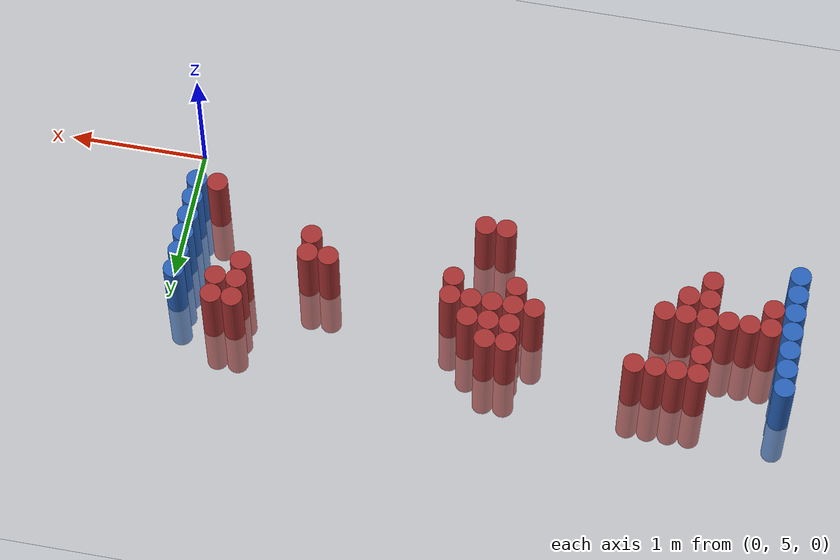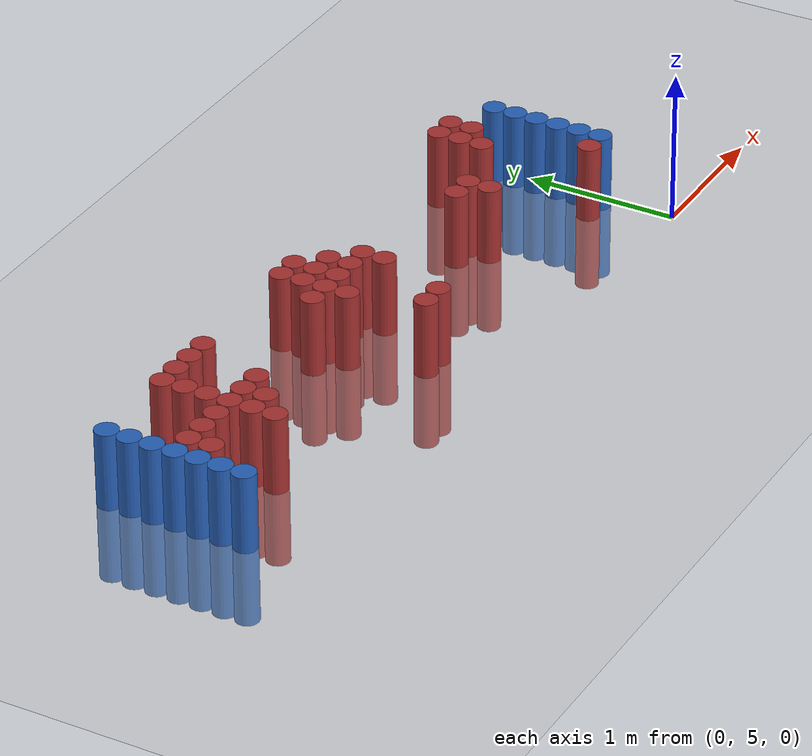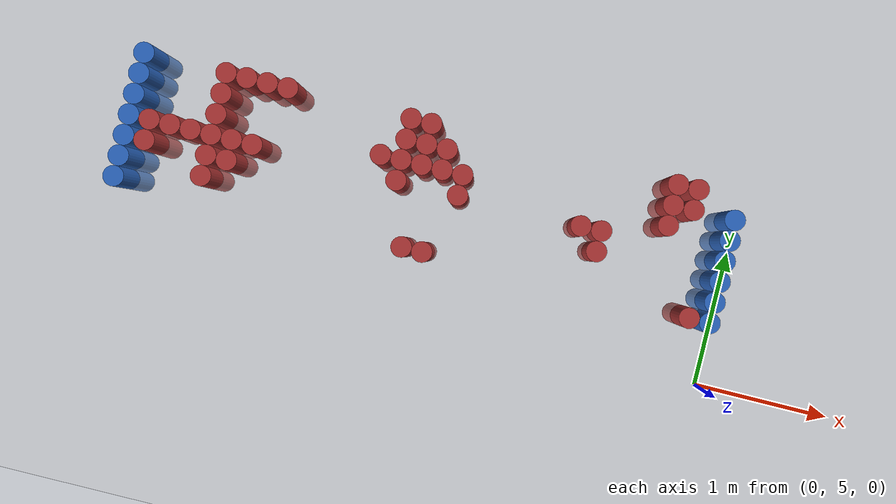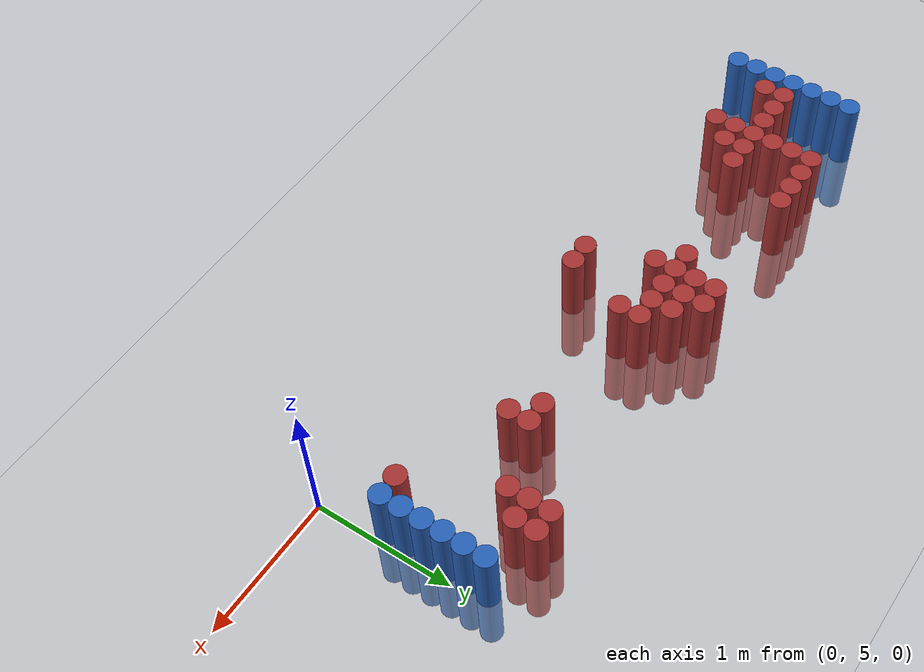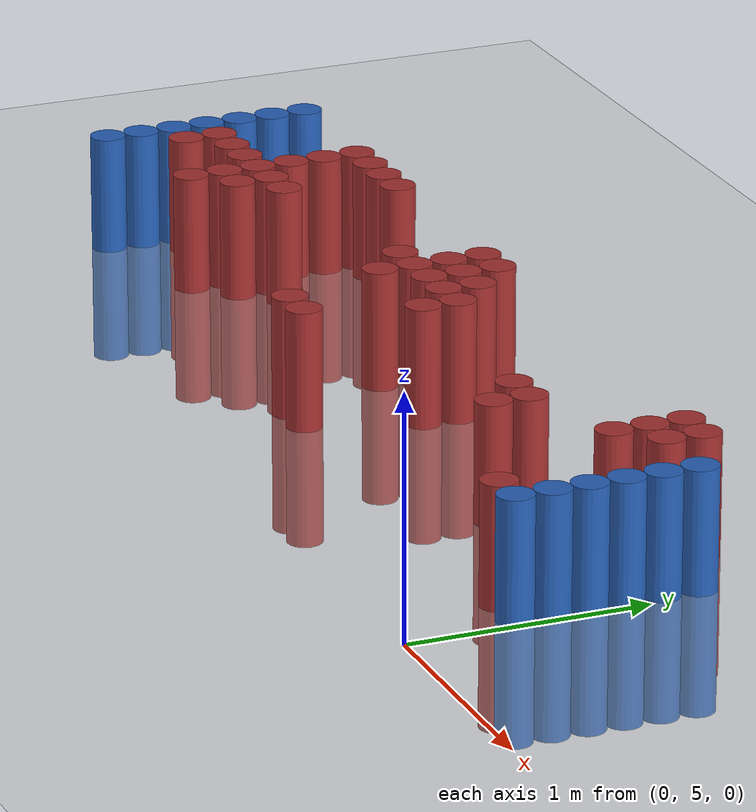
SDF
<sdf version="1.6">
 <world name="default">
  <model name="ground_plane">
   <static>1</static>
   <link name="link">
    <collision name="collision">
     <geometry><plane><normal>0 0 1</normal><size>100 100</size></plane></geometry>
     <surface><friction><ode><mu>100</mu><mu2>50</mu2></ode></friction></surface>
    </collision>
    <visual name="visual">
     <cast_shadows>0</cast_shadows>
     <geometry><plane><normal>0 0 1</normal><size>100 100</size></plane></geometry>
     <material>
      <script><uri>file://media/materials/scripts/gazebo.material</uri><name>Gazebo/Grey</name></script>
     </material>
    </visual>
   </link>
  </model>
  <model name="unit_cylinder_98">
   <static>1</static>
   <pose>-4.425000 5.475000 0.000000 0.000000 0.000000 0.000000</pose>
   <link name="link">
    <inertial>
     <mass>1</mass>
     <inertia><ixx>0.145833</ixx><ixy>0</ixy><ixz>0</ixz><iyy>0.145833</iyy><iyz>0</iyz><izz>0.125</izz></inertia>
    </inertial>
    <collision name="collision">
     <geometry><cylinder><radius>0.075000</radius><length>1</length></cylinder></geometry>
    </collision>
    <visual name="visual">
     <geometry><cylinder><radius>0.075000</radius><length>1</length></cylinder></geometry>
     <material>
      <ambient>0.152000 0.379000 0.720000 1</ambient>
      <diffuse>0.152000 0.379000 0.720000 1</diffuse>
     </material>
     <material>
      <script><name>Gazebo/Grey</name><uri>file://media/materials/scripts/gazebo.material</uri></script>
     </material>
    </visual>
   </link>
  </model>
  <model name="unit_cylinder_99">
   <static>1</static>
   <pose>-4.425000 5.625000 0.000000 0.000000 0.000000 0.000000</pose>
   <link name="link">
    <inertial>
     <mass>1</mass>
     <inertia><ixx>0.145833</ixx><ixy>0</ixy><ixz>0</ixz><iyy>0.145833</iyy><iyz>0</iyz><izz>0.125</izz></inertia>
    </inertial>
    <collision name="collision">
     <geometry><cylinder><radius>0.075000</radius><length>1</length></cylinder></geometry>
    </collision>
    <visual name="visual">
     <geometry><cylinder><radius>0.075000</radius><length>1</length></cylinder></geometry>
     <material>
      <ambient>0.152000 0.379000 0.720000 1</ambient>
      <diffuse>0.152000 0.379000 0.720000 1</diffuse>
     </material>
     <material>
      <script><name>Gazebo/Grey</name><uri>file://media/materials/scripts/gazebo.material</uri></script>
     </material>
    </visual>
   </link>
  </model>
  <model name="unit_cylinder_100">
   <static>1</static>
   <pose>-4.425000 5.775000 0.000000 0.000000 0.000000 0.000000</pose>
   <link name="link">
    <inertial>
     <mass>1</mass>
     <inertia><ixx>0.145833</ixx><ixy>0</ixy><ixz>0</ixz><iyy>0.145833</iyy><iyz>0</iyz><izz>0.125</izz></inertia>
    </inertial>
    <collision name="collision">
     <geometry><cylinder><radius>0.075000</radius><length>1</length></cylinder></geometry>
    </collision>
    <visual name="visual">
     <geometry><cylinder><radius>0.075000</radius><length>1</length></cylinder></geometry>
     <material>
      <ambient>0.152000 0.379000 0.720000 1</ambient>
      <diffuse>0.152000 0.379000 0.720000 1</diffuse>
     </material>
     <material>
      <script><name>Gazebo/Grey</name><uri>file://media/materials/scripts/gazebo.material</uri></script>
     </material>
    </visual>
   </link>
  </model>
  <model name="unit_cylinder_101">
   <static>1</static>
   <pose>-4.425000 5.925000 0.000000 0.000000 0.000000 0.000000</pose>
   <link name="link">
    <inertial>
     <mass>1</mass>
     <inertia><ixx>0.145833</ixx><ixy>0</ixy><ixz>0</ixz><iyy>0.145833</iyy><iyz>0</iyz><izz>0.125</izz></inertia>
    </inertial>
    <collision name="collision">
     <geometry><cylinder><radius>0.075000</radius><length>1</length></cylinder></geometry>
    </collision>
    <visual name="visual">
     <geometry><cylinder><radius>0.075000</radius><length>1</length></cylinder></geometry>
     <material>
      <ambient>0.152000 0.379000 0.720000 1</ambient>
      <diffuse>0.152000 0.379000 0.720000 1</diffuse>
     </material>
     <material>
      <script><name>Gazebo/Grey</name><uri>file://media/materials/scripts/gazebo.material</uri></script>
     </material>
    </visual>
   </link>
  </model>
  <model name="unit_cylinder_102">
   <static>1</static>
   <pose>-4.425000 6.075000 0.000000 0.000000 0.000000 0.000000</pose>
   <link name="link">
    <inertial>
     <mass>1</mass>
     <inertia><ixx>0.145833</ixx><ixy>0</ixy><ixz>0</ixz><iyy>0.145833</iyy><iyz>0</iyz><izz>0.125</izz></inertia>
    </inertial>
    <collision name="collision">
     <geometry><cylinder><radius>0.075000</radius><length>1</length></cylinder></geometry>
    </collision>
    <visual name="visual">
     <geometry><cylinder><radius>0.075000</radius><length>1</length></cylinder></geometry>
     <material>
      <ambient>0.152000 0.379000 0.720000 1</ambient>
      <diffuse>0.152000 0.379000 0.720000 1</diffuse>
     </material>
     <material>
      <script><name>Gazebo/Grey</name><uri>file://media/materials/scripts/gazebo.material</uri></script>
     </material>
    </visual>
   </link>
  </model>
  <model name="unit_cylinder_103">
   <static>1</static>
   <pose>-4.425000 6.225000 0.000000 0.000000 0.000000 0.000000</pose>
   <link name="link">
    <inertial>
     <mass>1</mass>
     <inertia><ixx>0.145833</ixx><ixy>0</ixy><ixz>0</ixz><iyy>0.145833</iyy><iyz>0</iyz><izz>0.125</izz></inertia>
    </inertial>
    <collision name="collision">
     <geometry><cylinder><radius>0.075000</radius><length>1</length></cylinder></geometry>
    </collision>
    <visual name="visual">
     <geometry><cylinder><radius>0.075000</radius><length>1</length></cylinder></geometry>
     <material>
      <ambient>0.152000 0.379000 0.720000 1</ambient>
      <diffuse>0.152000 0.379000 0.720000 1</diffuse>
     </material>
     <material>
      <script><name>Gazebo/Grey</name><uri>file://media/materials/scripts/gazebo.material</uri></script>
     </material>
    </visual>
   </link>
  </model>
  <model name="unit_cylinder_104">
   <static>1</static>
   <pose>-4.425000 6.375000 0.000000 0.000000 0.000000 0.000000</pose>
   <link name="link">
    <inertial>
     <mass>1</mass>
     <inertia><ixx>0.145833</ixx><ixy>0</ixy><ixz>0</ixz><iyy>0.145833</iyy><iyz>0</iyz><izz>0.125</izz></inertia>
    </inertial>
    <collision name="collision">
     <geometry><cylinder><radius>0.075000</radius><length>1</length></cylinder></geometry>
    </collision>
    <visual name="visual">
     <geometry><cylinder><radius>0.075000</radius><length>1</length></cylinder></geometry>
     <material>
      <ambient>0.152000 0.379000 0.720000 1</ambient>
      <diffuse>0.152000 0.379000 0.720000 1</diffuse>
     </material>
     <material>
      <script><name>Gazebo/Grey</name><uri>file://media/materials/scripts/gazebo.material</uri></script>
     </material>
    </visual>
   </link>
  </model>
  <model name="unit_cylinder_126">
   <static>1</static>
   <pose>-4.275000 5.775000 0.000000 0.000000 0.000000 0.000000</pose>
   <link name="link">
    <inertial>
     <mass>1</mass>
     <inertia><ixx>0.145833</ixx><ixy>0</ixy><ixz>0</ixz><iyy>0.145833</iyy><iyz>0</iyz><izz>0.125</izz></inertia>
    </inertial>
    <collision name="collision">
     <geometry><cylinder><radius>0.075000</radius><length>1</length></cylinder></geometry>
    </collision>
    <visual name="visual">
     <geometry><cylinder><radius>0.075000</radius><length>1</length></cylinder></geometry>
     <material>
      <ambient>0.648000 0.192000 0.192000 1</ambient>
      <diffuse>0.648000 0.192000 0.192000 1</diffuse>
     </material>
     <material>
      <script><name>Gazebo/Grey</name><uri>file://media/materials/scripts/gazebo.material</uri></script>
     </material>
    </visual>
   </link>
  </model>
  <model name="unit_cylinder_127">
   <static>1</static>
   <pose>-4.275000 5.925000 0.000000 0.000000 0.000000 0.000000</pose>
   <link name="link">
    <inertial>
     <mass>1</mass>
     <inertia><ixx>0.145833</ixx><ixy>0</ixy><ixz>0</ixz><iyy>0.145833</iyy><iyz>0</iyz><izz>0.125</izz></inertia>
    </inertial>
    <collision name="collision">
     <geometry><cylinder><radius>0.075000</radius><length>1</length></cylinder></geometry>
    </collision>
    <visual name="visual">
     <geometry><cylinder><radius>0.075000</radius><length>1</length></cylinder></geometry>
     <material>
      <ambient>0.648000 0.192000 0.192000 1</ambient>
      <diffuse>0.648000 0.192000 0.192000 1</diffuse>
     </material>
     <material>
      <script><name>Gazebo/Grey</name><uri>file://media/materials/scripts/gazebo.material</uri></script>
     </material>
    </visual>
   </link>
  </model>
  <model name="unit_cylinder_139">
   <static>1</static>
   <pose>-4.125000 5.925000 0.000000 0.000000 0.000000 0.000000</pose>
   <link name="link">
    <inertial>
     <mass>1</mass>
     <inertia><ixx>0.145833</ixx><ixy>0</ixy><ixz>0</ixz><iyy>0.145833</iyy><iyz>0</iyz><izz>0.125</izz></inertia>
    </inertial>
    <collision name="collision">
     <geometry><cylinder><radius>0.075000</radius><length>1</length></cylinder></geometry>
    </collision>
    <visual name="visual">
     <geometry><cylinder><radius>0.075000</radius><length>1</length></cylinder></geometry>
     <material>
      <ambient>0.648000 0.192000 0.192000 1</ambient>
      <diffuse>0.648000 0.192000 0.192000 1</diffuse>
     </material>
     <material>
      <script><name>Gazebo/Grey</name><uri>file://media/materials/scripts/gazebo.material</uri></script>
     </material>
    </visual>
   </link>
  </model>
  <model name="unit_cylinder_144">
   <static>1</static>
   <pose>-3.975000 5.925000 0.000000 0.000000 0.000000 0.000000</pose>
   <link name="link">
    <inertial>
     <mass>1</mass>
     <inertia><ixx>0.145833</ixx><ixy>0</ixy><ixz>0</ixz><iyy>0.145833</iyy><iyz>0</iyz><izz>0.125</izz></inertia>
    </inertial>
    <collision name="collision">
     <geometry><cylinder><radius>0.075000</radius><length>1</length></cylinder></geometry>
    </collision>
    <visual name="visual">
     <geometry><cylinder><radius>0.075000</radius><length>1</length></cylinder></geometry>
     <material>
      <ambient>0.648000 0.192000 0.192000 1</ambient>
      <diffuse>0.648000 0.192000 0.192000 1</diffuse>
     </material>
     <material>
      <script><name>Gazebo/Grey</name><uri>file://media/materials/scripts/gazebo.material</uri></script>
     </material>
    </visual>
   </link>
  </model>
  <model name="unit_cylinder_146">
   <static>1</static>
   <pose>-3.825000 5.625000 0.000000 0.000000 0.000000 0.000000</pose>
   <link name="link">
    <inertial>
     <mass>1</mass>
     <inertia><ixx>0.145833</ixx><ixy>0</ixy><ixz>0</ixz><iyy>0.145833</iyy><iyz>0</iyz><izz>0.125</izz></inertia>
    </inertial>
    <collision name="collision">
     <geometry><cylinder><radius>0.075000</radius><length>1</length></cylinder></geometry>
    </collision>
    <visual name="visual">
     <geometry><cylinder><radius>0.075000</radius><length>1</length></cylinder></geometry>
     <material>
      <ambient>0.648000 0.192000 0.192000 1</ambient>
      <diffuse>0.648000 0.192000 0.192000 1</diffuse>
     </material>
     <material>
      <script><name>Gazebo/Grey</name><uri>file://media/materials/scripts/gazebo.material</uri></script>
     </material>
    </visual>
   </link>
  </model>
  <model name="unit_cylinder_147">
   <static>1</static>
   <pose>-3.825000 5.775000 0.000000 0.000000 0.000000 0.000000</pose>
   <link name="link">
    <inertial>
     <mass>1</mass>
     <inertia><ixx>0.145833</ixx><ixy>0</ixy><ixz>0</ixz><iyy>0.145833</iyy><iyz>0</iyz><izz>0.125</izz></inertia>
    </inertial>
    <collision name="collision">
     <geometry><cylinder><radius>0.075000</radius><length>1</length></cylinder></geometry>
    </collision>
    <visual name="visual">
     <geometry><cylinder><radius>0.075000</radius><length>1</length></cylinder></geometry>
     <material>
      <ambient>0.648000 0.192000 0.192000 1</ambient>
      <diffuse>0.648000 0.192000 0.192000 1</diffuse>
     </material>
     <material>
      <script><name>Gazebo/Grey</name><uri>file://media/materials/scripts/gazebo.material</uri></script>
     </material>
    </visual>
   </link>
  </model>
  <model name="unit_cylinder_148">
   <static>1</static>
   <pose>-3.825000 5.925000 0.000000 0.000000 0.000000 0.000000</pose>
   <link name="link">
    <inertial>
     <mass>1</mass>
     <inertia><ixx>0.145833</ixx><ixy>0</ixy><ixz>0</ixz><iyy>0.145833</iyy><iyz>0</iyz><izz>0.125</izz></inertia>
    </inertial>
    <collision name="collision">
     <geometry><cylinder><radius>0.075000</radius><length>1</length></cylinder></geometry>
    </collision>
    <visual name="visual">
     <geometry><cylinder><radius>0.075000</radius><length>1</length></cylinder></geometry>
     <material>
      <ambient>0.648000 0.192000 0.192000 1</ambient>
      <diffuse>0.648000 0.192000 0.192000 1</diffuse>
     </material>
     <material>
      <script><name>Gazebo/Grey</name><uri>file://media/materials/scripts/gazebo.material</uri></script>
     </material>
    </visual>
   </link>
  </model>
  <model name="unit_cylinder_149">
   <static>1</static>
   <pose>-3.825000 6.075000 0.000000 0.000000 0.000000 0.000000</pose>
   <link name="link">
    <inertial>
     <mass>1</mass>
     <inertia><ixx>0.145833</ixx><ixy>0</ixy><ixz>0</ixz><iyy>0.145833</iyy><iyz>0</iyz><izz>0.125</izz></inertia>
    </inertial>
    <collision name="collision">
     <geometry><cylinder><radius>0.075000</radius><length>1</length></cylinder></geometry>
    </collision>
    <visual name="visual">
     <geometry><cylinder><radius>0.075000</radius><length>1</length></cylinder></geometry>
     <material>
      <ambient>0.648000 0.192000 0.192000 1</ambient>
      <diffuse>0.648000 0.192000 0.192000 1</diffuse>
     </material>
     <material>
      <script><name>Gazebo/Grey</name><uri>file://media/materials/scripts/gazebo.material</uri></script>
     </material>
    </visual>
   </link>
  </model>
  <model name="unit_cylinder_150">
   <static>1</static>
   <pose>-3.825000 6.225000 0.000000 0.000000 0.000000 0.000000</pose>
   <link name="link">
    <inertial>
     <mass>1</mass>
     <inertia><ixx>0.145833</ixx><ixy>0</ixy><ixz>0</ixz><iyy>0.145833</iyy><iyz>0</iyz><izz>0.125</izz></inertia>
    </inertial>
    <collision name="collision">
     <geometry><cylinder><radius>0.075000</radius><length>1</length></cylinder></geometry>
    </collision>
    <visual name="visual">
     <geometry><cylinder><radius>0.075000</radius><length>1</length></cylinder></geometry>
     <material>
      <ambient>0.648000 0.192000 0.192000 1</ambient>
      <diffuse>0.648000 0.192000 0.192000 1</diffuse>
     </material>
     <material>
      <script><name>Gazebo/Grey</name><uri>file://media/materials/scripts/gazebo.material</uri></script>
     </material>
    </visual>
   </link>
  </model>
  <model name="unit_cylinder_151">
   <static>1</static>
   <pose>-3.825000 6.375000 0.000000 0.000000 0.000000 0.000000</pose>
   <link name="link">
    <inertial>
     <mass>1</mass>
     <inertia><ixx>0.145833</ixx><ixy>0</ixy><ixz>0</ixz><iyy>0.145833</iyy><iyz>0</iyz><izz>0.125</izz></inertia>
    </inertial>
    <collision name="collision">
     <geometry><cylinder><radius>0.075000</radius><length>1</length></cylinder></geometry>
    </collision>
    <visual name="visual">
     <geometry><cylinder><radius>0.075000</radius><length>1</length></cylinder></geometry>
     <material>
      <ambient>0.648000 0.192000 0.192000 1</ambient>
      <diffuse>0.648000 0.192000 0.192000 1</diffuse>
     </material>
     <material>
      <script><name>Gazebo/Grey</name><uri>file://media/materials/scripts/gazebo.material</uri></script>
     </material>
    </visual>
   </link>
  </model>
  <model name="unit_cylinder_155">
   <static>1</static>
   <pose>-3.675000 5.775000 0.000000 0.000000 0.000000 0.000000</pose>
   <link name="link">
    <inertial>
     <mass>1</mass>
     <inertia><ixx>0.145833</ixx><ixy>0</ixy><ixz>0</ixz><iyy>0.145833</iyy><iyz>0</iyz><izz>0.125</izz></inertia>
    </inertial>
    <collision name="collision">
     <geometry><cylinder><radius>0.075000</radius><length>1</length></cylinder></geometry>
    </collision>
    <visual name="visual">
     <geometry><cylinder><radius>0.075000</radius><length>1</length></cylinder></geometry>
     <material>
      <ambient>0.648000 0.192000 0.192000 1</ambient>
      <diffuse>0.648000 0.192000 0.192000 1</diffuse>
     </material>
     <material>
      <script><name>Gazebo/Grey</name><uri>file://media/materials/scripts/gazebo.material</uri></script>
     </material>
    </visual>
   </link>
  </model>
  <model name="unit_cylinder_156">
   <static>1</static>
   <pose>-3.675000 5.925000 0.000000 0.000000 0.000000 0.000000</pose>
   <link name="link">
    <inertial>
     <mass>1</mass>
     <inertia><ixx>0.145833</ixx><ixy>0</ixy><ixz>0</ixz><iyy>0.145833</iyy><iyz>0</iyz><izz>0.125</izz></inertia>
    </inertial>
    <collision name="collision">
     <geometry><cylinder><radius>0.075000</radius><length>1</length></cylinder></geometry>
    </collision>
    <visual name="visual">
     <geometry><cylinder><radius>0.075000</radius><length>1</length></cylinder></geometry>
     <material>
      <ambient>0.648000 0.192000 0.192000 1</ambient>
      <diffuse>0.648000 0.192000 0.192000 1</diffuse>
     </material>
     <material>
      <script><name>Gazebo/Grey</name><uri>file://media/materials/scripts/gazebo.material</uri></script>
     </material>
    </visual>
   </link>
  </model>
  <model name="unit_cylinder_157">
   <static>1</static>
   <pose>-3.675000 6.375000 0.000000 0.000000 0.000000 0.000000</pose>
   <link name="link">
    <inertial>
     <mass>1</mass>
     <inertia><ixx>0.145833</ixx><ixy>0</ixy><ixz>0</ixz><iyy>0.145833</iyy><iyz>0</iyz><izz>0.125</izz></inertia>
    </inertial>
    <collision name="collision">
     <geometry><cylinder><radius>0.075000</radius><length>1</length></cylinder></geometry>
    </collision>
    <visual name="visual">
     <geometry><cylinder><radius>0.075000</radius><length>1</length></cylinder></geometry>
     <material>
      <ambient>0.648000 0.192000 0.192000 1</ambient>
      <diffuse>0.648000 0.192000 0.192000 1</diffuse>
     </material>
     <material>
      <script><name>Gazebo/Grey</name><uri>file://media/materials/scripts/gazebo.material</uri></script>
     </material>
    </visual>
   </link>
  </model>
  <model name="unit_cylinder_165">
   <static>1</static>
   <pose>-3.525000 5.925000 0.000000 0.000000 0.000000 0.000000</pose>
   <link name="link">
    <inertial>
     <mass>1</mass>
     <inertia><ixx>0.145833</ixx><ixy>0</ixy><ixz>0</ixz><iyy>0.145833</iyy><iyz>0</iyz><izz>0.125</izz></inertia>
    </inertial>
    <collision name="collision">
     <geometry><cylinder><radius>0.075000</radius><length>1</length></cylinder></geometry>
    </collision>
    <visual name="visual">
     <geometry><cylinder><radius>0.075000</radius><length>1</length></cylinder></geometry>
     <material>
      <ambient>0.648000 0.192000 0.192000 1</ambient>
      <diffuse>0.648000 0.192000 0.192000 1</diffuse>
     </material>
     <material>
      <script><name>Gazebo/Grey</name><uri>file://media/materials/scripts/gazebo.material</uri></script>
     </material>
    </visual>
   </link>
  </model>
  <model name="unit_cylinder_166">
   <static>1</static>
   <pose>-3.525000 6.375000 0.000000 0.000000 0.000000 0.000000</pose>
   <link name="link">
    <inertial>
     <mass>1</mass>
     <inertia><ixx>0.145833</ixx><ixy>0</ixy><ixz>0</ixz><iyy>0.145833</iyy><iyz>0</iyz><izz>0.125</izz></inertia>
    </inertial>
    <collision name="collision">
     <geometry><cylinder><radius>0.075000</radius><length>1</length></cylinder></geometry>
    </collision>
    <visual name="visual">
     <geometry><cylinder><radius>0.075000</radius><length>1</length></cylinder></geometry>
     <material>
      <ambient>0.648000 0.192000 0.192000 1</ambient>
      <diffuse>0.648000 0.192000 0.192000 1</diffuse>
     </material>
     <material>
      <script><name>Gazebo/Grey</name><uri>file://media/materials/scripts/gazebo.material</uri></script>
     </material>
    </visual>
   </link>
  </model>
  <model name="unit_cylinder_171">
   <static>1</static>
   <pose>-3.375000 6.375000 0.000000 0.000000 0.000000 0.000000</pose>
   <link name="link">
    <inertial>
     <mass>1</mass>
     <inertia><ixx>0.145833</ixx><ixy>0</ixy><ixz>0</ixz><iyy>0.145833</iyy><iyz>0</iyz><izz>0.125</izz></inertia>
    </inertial>
    <collision name="collision">
     <geometry><cylinder><radius>0.075000</radius><length>1</length></cylinder></geometry>
    </collision>
    <visual name="visual">
     <geometry><cylinder><radius>0.075000</radius><length>1</length></cylinder></geometry>
     <material>
      <ambient>0.648000 0.192000 0.192000 1</ambient>
      <diffuse>0.648000 0.192000 0.192000 1</diffuse>
     </material>
     <material>
      <script><name>Gazebo/Grey</name><uri>file://media/materials/scripts/gazebo.material</uri></script>
     </material>
    </visual>
   </link>
  </model>
  <model name="unit_cylinder_207">
   <static>1</static>
   <pose>-2.625000 6.075000 0.000000 0.000000 0.000000 0.000000</pose>
   <link name="link">
    <inertial>
     <mass>1</mass>
     <inertia><ixx>0.145833</ixx><ixy>0</ixy><ixz>0</ixz><iyy>0.145833</iyy><iyz>0</iyz><izz>0.125</izz></inertia>
    </inertial>
    <collision name="collision">
     <geometry><cylinder><radius>0.075000</radius><length>1</length></cylinder></geometry>
    </collision>
    <visual name="visual">
     <geometry><cylinder><radius>0.075000</radius><length>1</length></cylinder></geometry>
     <material>
      <ambient>0.648000 0.192000 0.192000 1</ambient>
      <diffuse>0.648000 0.192000 0.192000 1</diffuse>
     </material>
     <material>
      <script><name>Gazebo/Grey</name><uri>file://media/materials/scripts/gazebo.material</uri></script>
     </material>
    </visual>
   </link>
  </model>
  <model name="unit_cylinder_210">
   <static>1</static>
   <pose>-2.475000 5.925000 0.000000 0.000000 0.000000 0.000000</pose>
   <link name="link">
    <inertial>
     <mass>1</mass>
     <inertia><ixx>0.145833</ixx><ixy>0</ixy><ixz>0</ixz><iyy>0.145833</iyy><iyz>0</iyz><izz>0.125</izz></inertia>
    </inertial>
    <collision name="collision">
     <geometry><cylinder><radius>0.075000</radius><length>1</length></cylinder></geometry>
    </collision>
    <visual name="visual">
     <geometry><cylinder><radius>0.075000</radius><length>1</length></cylinder></geometry>
     <material>
      <ambient>0.648000 0.192000 0.192000 1</ambient>
      <diffuse>0.648000 0.192000 0.192000 1</diffuse>
     </material>
     <material>
      <script><name>Gazebo/Grey</name><uri>file://media/materials/scripts/gazebo.material</uri></script>
     </material>
    </visual>
   </link>
  </model>
  <model name="unit_cylinder_211">
   <static>1</static>
   <pose>-2.475000 6.075000 0.000000 0.000000 0.000000 0.000000</pose>
   <link name="link">
    <inertial>
     <mass>1</mass>
     <inertia><ixx>0.145833</ixx><ixy>0</ixy><ixz>0</ixz><iyy>0.145833</iyy><iyz>0</iyz><izz>0.125</izz></inertia>
    </inertial>
    <collision name="collision">
     <geometry><cylinder><radius>0.075000</radius><length>1</length></cylinder></geometry>
    </collision>
    <visual name="visual">
     <geometry><cylinder><radius>0.075000</radius><length>1</length></cylinder></geometry>
     <material>
      <ambient>0.648000 0.192000 0.192000 1</ambient>
      <diffuse>0.648000 0.192000 0.192000 1</diffuse>
     </material>
     <material>
      <script><name>Gazebo/Grey</name><uri>file://media/materials/scripts/gazebo.material</uri></script>
     </material>
    </visual>
   </link>
  </model>
  <model name="unit_cylinder_212">
   <static>1</static>
   <pose>-2.475000 6.225000 0.000000 0.000000 0.000000 0.000000</pose>
   <link name="link">
    <inertial>
     <mass>1</mass>
     <inertia><ixx>0.145833</ixx><ixy>0</ixy><ixz>0</ixz><iyy>0.145833</iyy><iyz>0</iyz><izz>0.125</izz></inertia>
    </inertial>
    <collision name="collision">
     <geometry><cylinder><radius>0.075000</radius><length>1</length></cylinder></geometry>
    </collision>
    <visual name="visual">
     <geometry><cylinder><radius>0.075000</radius><length>1</length></cylinder></geometry>
     <material>
      <ambient>0.648000 0.192000 0.192000 1</ambient>
      <diffuse>0.648000 0.192000 0.192000 1</diffuse>
     </material>
     <material>
      <script><name>Gazebo/Grey</name><uri>file://media/materials/scripts/gazebo.material</uri></script>
     </material>
    </visual>
   </link>
  </model>
  <model name="unit_cylinder_213">
   <static>1</static>
   <pose>-2.475000 6.375000 0.000000 0.000000 0.000000 0.000000</pose>
   <link name="link">
    <inertial>
     <mass>1</mass>
     <inertia><ixx>0.145833</ixx><ixy>0</ixy><ixz>0</ixz><iyy>0.145833</iyy><iyz>0</iyz><izz>0.125</izz></inertia>
    </inertial>
    <collision name="collision">
     <geometry><cylinder><radius>0.075000</radius><length>1</length></cylinder></geometry>
    </collision>
    <visual name="visual">
     <geometry><cylinder><radius>0.075000</radius><length>1</length></cylinder></geometry>
     <material>
      <ambient>0.648000 0.192000 0.192000 1</ambient>
      <diffuse>0.648000 0.192000 0.192000 1</diffuse>
     </material>
     <material>
      <script><name>Gazebo/Grey</name><uri>file://media/materials/scripts/gazebo.material</uri></script>
     </material>
    </visual>
   </link>
  </model>
  <model name="unit_cylinder_217">
   <static>1</static>
   <pose>-2.325000 5.475000 0.000000 0.000000 0.000000 0.000000</pose>
   <link name="link">
    <inertial>
     <mass>1</mass>
     <inertia><ixx>0.145833</ixx><ixy>0</ixy><ixz>0</ixz><iyy>0.145833</iyy><iyz>0</iyz><izz>0.125</izz></inertia>
    </inertial>
    <collision name="collision">
     <geometry><cylinder><radius>0.075000</radius><length>1</length></cylinder></geometry>
    </collision>
    <visual name="visual">
     <geometry><cylinder><radius>0.075000</radius><length>1</length></cylinder></geometry>
     <material>
      <ambient>0.648000 0.192000 0.192000 1</ambient>
      <diffuse>0.648000 0.192000 0.192000 1</diffuse>
     </material>
     <material>
      <script><name>Gazebo/Grey</name><uri>file://media/materials/scripts/gazebo.material</uri></script>
     </material>
    </visual>
   </link>
  </model>
  <model name="unit_cylinder_218">
   <static>1</static>
   <pose>-2.325000 6.075000 0.000000 0.000000 0.000000 0.000000</pose>
   <link name="link">
    <inertial>
     <mass>1</mass>
     <inertia><ixx>0.145833</ixx><ixy>0</ixy><ixz>0</ixz><iyy>0.145833</iyy><iyz>0</iyz><izz>0.125</izz></inertia>
    </inertial>
    <collision name="collision">
     <geometry><cylinder><radius>0.075000</radius><length>1</length></cylinder></geometry>
    </collision>
    <visual name="visual">
     <geometry><cylinder><radius>0.075000</radius><length>1</length></cylinder></geometry>
     <material>
      <ambient>0.648000 0.192000 0.192000 1</ambient>
      <diffuse>0.648000 0.192000 0.192000 1</diffuse>
     </material>
     <material>
      <script><name>Gazebo/Grey</name><uri>file://media/materials/scripts/gazebo.material</uri></script>
     </material>
    </visual>
   </link>
  </model>
  <model name="unit_cylinder_219">
   <static>1</static>
   <pose>-2.325000 6.225000 0.000000 0.000000 0.000000 0.000000</pose>
   <link name="link">
    <inertial>
     <mass>1</mass>
     <inertia><ixx>0.145833</ixx><ixy>0</ixy><ixz>0</ixz><iyy>0.145833</iyy><iyz>0</iyz><izz>0.125</izz></inertia>
    </inertial>
    <collision name="collision">
     <geometry><cylinder><radius>0.075000</radius><length>1</length></cylinder></geometry>
    </collision>
    <visual name="visual">
     <geometry><cylinder><radius>0.075000</radius><length>1</length></cylinder></geometry>
     <material>
      <ambient>0.648000 0.192000 0.192000 1</ambient>
      <diffuse>0.648000 0.192000 0.192000 1</diffuse>
     </material>
     <material>
      <script><name>Gazebo/Grey</name><uri>file://media/materials/scripts/gazebo.material</uri></script>
     </material>
    </visual>
   </link>
  </model>
  <model name="unit_cylinder_220">
   <static>1</static>
   <pose>-2.325000 6.375000 0.000000 0.000000 0.000000 0.000000</pose>
   <link name="link">
    <inertial>
     <mass>1</mass>
     <inertia><ixx>0.145833</ixx><ixy>0</ixy><ixz>0</ixz><iyy>0.145833</iyy><iyz>0</iyz><izz>0.125</izz></inertia>
    </inertial>
    <collision name="collision">
     <geometry><cylinder><radius>0.075000</radius><length>1</length></cylinder></geometry>
    </collision>
    <visual name="visual">
     <geometry><cylinder><radius>0.075000</radius><length>1</length></cylinder></geometry>
     <material>
      <ambient>0.648000 0.192000 0.192000 1</ambient>
      <diffuse>0.648000 0.192000 0.192000 1</diffuse>
     </material>
     <material>
      <script><name>Gazebo/Grey</name><uri>file://media/materials/scripts/gazebo.material</uri></script>
     </material>
    </visual>
   </link>
  </model>
  <model name="unit_cylinder_224">
   <static>1</static>
   <pose>-2.175000 5.475000 0.000000 0.000000 0.000000 0.000000</pose>
   <link name="link">
    <inertial>
     <mass>1</mass>
     <inertia><ixx>0.145833</ixx><ixy>0</ixy><ixz>0</ixz><iyy>0.145833</iyy><iyz>0</iyz><izz>0.125</izz></inertia>
    </inertial>
    <collision name="collision">
     <geometry><cylinder><radius>0.075000</radius><length>1</length></cylinder></geometry>
    </collision>
    <visual name="visual">
     <geometry><cylinder><radius>0.075000</radius><length>1</length></cylinder></geometry>
     <material>
      <ambient>0.648000 0.192000 0.192000 1</ambient>
      <diffuse>0.648000 0.192000 0.192000 1</diffuse>
     </material>
     <material>
      <script><name>Gazebo/Grey</name><uri>file://media/materials/scripts/gazebo.material</uri></script>
     </material>
    </visual>
   </link>
  </model>
  <model name="unit_cylinder_225">
   <static>1</static>
   <pose>-2.175000 6.075000 0.000000 0.000000 0.000000 0.000000</pose>
   <link name="link">
    <inertial>
     <mass>1</mass>
     <inertia><ixx>0.145833</ixx><ixy>0</ixy><ixz>0</ixz><iyy>0.145833</iyy><iyz>0</iyz><izz>0.125</izz></inertia>
    </inertial>
    <collision name="collision">
     <geometry><cylinder><radius>0.075000</radius><length>1</length></cylinder></geometry>
    </collision>
    <visual name="visual">
     <geometry><cylinder><radius>0.075000</radius><length>1</length></cylinder></geometry>
     <material>
      <ambient>0.648000 0.192000 0.192000 1</ambient>
      <diffuse>0.648000 0.192000 0.192000 1</diffuse>
     </material>
     <material>
      <script><name>Gazebo/Grey</name><uri>file://media/materials/scripts/gazebo.material</uri></script>
     </material>
    </visual>
   </link>
  </model>
  <model name="unit_cylinder_226">
   <static>1</static>
   <pose>-2.175000 6.225000 0.000000 0.000000 0.000000 0.000000</pose>
   <link name="link">
    <inertial>
     <mass>1</mass>
     <inertia><ixx>0.145833</ixx><ixy>0</ixy><ixz>0</ixz><iyy>0.145833</iyy><iyz>0</iyz><izz>0.125</izz></inertia>
    </inertial>
    <collision name="collision">
     <geometry><cylinder><radius>0.075000</radius><length>1</length></cylinder></geometry>
    </collision>
    <visual name="visual">
     <geometry><cylinder><radius>0.075000</radius><length>1</length></cylinder></geometry>
     <material>
      <ambient>0.648000 0.192000 0.192000 1</ambient>
      <diffuse>0.648000 0.192000 0.192000 1</diffuse>
     </material>
     <material>
      <script><name>Gazebo/Grey</name><uri>file://media/materials/scripts/gazebo.material</uri></script>
     </material>
    </visual>
   </link>
  </model>
  <model name="unit_cylinder_231">
   <static>1</static>
   <pose>-2.025000 5.925000 0.000000 0.000000 0.000000 0.000000</pose>
   <link name="link">
    <inertial>
     <mass>1</mass>
     <inertia><ixx>0.145833</ixx><ixy>0</ixy><ixz>0</ixz><iyy>0.145833</iyy><iyz>0</iyz><izz>0.125</izz></inertia>
    </inertial>
    <collision name="collision">
     <geometry><cylinder><radius>0.075000</radius><length>1</length></cylinder></geometry>
    </collision>
    <visual name="visual">
     <geometry><cylinder><radius>0.075000</radius><length>1</length></cylinder></geometry>
     <material>
      <ambient>0.648000 0.192000 0.192000 1</ambient>
      <diffuse>0.648000 0.192000 0.192000 1</diffuse>
     </material>
     <material>
      <script><name>Gazebo/Grey</name><uri>file://media/materials/scripts/gazebo.material</uri></script>
     </material>
    </visual>
   </link>
  </model>
  <model name="unit_cylinder_232">
   <static>1</static>
   <pose>-2.025000 6.075000 0.000000 0.000000 0.000000 0.000000</pose>
   <link name="link">
    <inertial>
     <mass>1</mass>
     <inertia><ixx>0.145833</ixx><ixy>0</ixy><ixz>0</ixz><iyy>0.145833</iyy><iyz>0</iyz><izz>0.125</izz></inertia>
    </inertial>
    <collision name="collision">
     <geometry><cylinder><radius>0.075000</radius><length>1</length></cylinder></geometry>
    </collision>
    <visual name="visual">
     <geometry><cylinder><radius>0.075000</radius><length>1</length></cylinder></geometry>
     <material>
      <ambient>0.648000 0.192000 0.192000 1</ambient>
      <diffuse>0.648000 0.192000 0.192000 1</diffuse>
     </material>
     <material>
      <script><name>Gazebo/Grey</name><uri>file://media/materials/scripts/gazebo.material</uri></script>
     </material>
    </visual>
   </link>
  </model>
  <model name="unit_cylinder_244">
   <static>1</static>
   <pose>-1.125000 5.925000 0.000000 0.000000 0.000000 0.000000</pose>
   <link name="link">
    <inertial>
     <mass>1</mass>
     <inertia><ixx>0.145833</ixx><ixy>0</ixy><ixz>0</ixz><iyy>0.145833</iyy><iyz>0</iyz><izz>0.125</izz></inertia>
    </inertial>
    <collision name="collision">
     <geometry><cylinder><radius>0.075000</radius><length>1</length></cylinder></geometry>
    </collision>
    <visual name="visual">
     <geometry><cylinder><radius>0.075000</radius><length>1</length></cylinder></geometry>
     <material>
      <ambient>0.648000 0.192000 0.192000 1</ambient>
      <diffuse>0.648000 0.192000 0.192000 1</diffuse>
     </material>
     <material>
      <script><name>Gazebo/Grey</name><uri>file://media/materials/scripts/gazebo.material</uri></script>
     </material>
    </visual>
   </link>
  </model>
  <model name="unit_cylinder_245">
   <static>1</static>
   <pose>-0.975000 5.775000 0.000000 0.000000 0.000000 0.000000</pose>
   <link name="link">
    <inertial>
     <mass>1</mass>
     <inertia><ixx>0.145833</ixx><ixy>0</ixy><ixz>0</ixz><iyy>0.145833</iyy><iyz>0</iyz><izz>0.125</izz></inertia>
    </inertial>
    <collision name="collision">
     <geometry><cylinder><radius>0.075000</radius><length>1</length></cylinder></geometry>
    </collision>
    <visual name="visual">
     <geometry><cylinder><radius>0.075000</radius><length>1</length></cylinder></geometry>
     <material>
      <ambient>0.648000 0.192000 0.192000 1</ambient>
      <diffuse>0.648000 0.192000 0.192000 1</diffuse>
     </material>
     <material>
      <script><name>Gazebo/Grey</name><uri>file://media/materials/scripts/gazebo.material</uri></script>
     </material>
    </visual>
   </link>
  </model>
  <model name="unit_cylinder_246">
   <static>1</static>
   <pose>-0.975000 5.925000 0.000000 0.000000 0.000000 0.000000</pose>
   <link name="link">
    <inertial>
     <mass>1</mass>
     <inertia><ixx>0.145833</ixx><ixy>0</ixy><ixz>0</ixz><iyy>0.145833</iyy><iyz>0</iyz><izz>0.125</izz></inertia>
    </inertial>
    <collision name="collision">
     <geometry><cylinder><radius>0.075000</radius><length>1</length></cylinder></geometry>
    </collision>
    <visual name="visual">
     <geometry><cylinder><radius>0.075000</radius><length>1</length></cylinder></geometry>
     <material>
      <ambient>0.648000 0.192000 0.192000 1</ambient>
      <diffuse>0.648000 0.192000 0.192000 1</diffuse>
     </material>
     <material>
      <script><name>Gazebo/Grey</name><uri>file://media/materials/scripts/gazebo.material</uri></script>
     </material>
    </visual>
   </link>
  </model>
  <model name="unit_cylinder_253">
   <static>1</static>
   <pose>-0.525000 6.075000 0.000000 0.000000 0.000000 0.000000</pose>
   <link name="link">
    <inertial>
     <mass>1</mass>
     <inertia><ixx>0.145833</ixx><ixy>0</ixy><ixz>0</ixz><iyy>0.145833</iyy><iyz>0</iyz><izz>0.125</izz></inertia>
    </inertial>
    <collision name="collision">
     <geometry><cylinder><radius>0.075000</radius><length>1</length></cylinder></geometry>
    </collision>
    <visual name="visual">
     <geometry><cylinder><radius>0.075000</radius><length>1</length></cylinder></geometry>
     <material>
      <ambient>0.648000 0.192000 0.192000 1</ambient>
      <diffuse>0.648000 0.192000 0.192000 1</diffuse>
     </material>
     <material>
      <script><name>Gazebo/Grey</name><uri>file://media/materials/scripts/gazebo.material</uri></script>
     </material>
    </visual>
   </link>
  </model>
  <model name="unit_cylinder_254">
   <static>1</static>
   <pose>-0.525000 6.225000 0.000000 0.000000 0.000000 0.000000</pose>
   <link name="link">
    <inertial>
     <mass>1</mass>
     <inertia><ixx>0.145833</ixx><ixy>0</ixy><ixz>0</ixz><iyy>0.145833</iyy><iyz>0</iyz><izz>0.125</izz></inertia>
    </inertial>
    <collision name="collision">
     <geometry><cylinder><radius>0.075000</radius><length>1</length></cylinder></geometry>
    </collision>
    <visual name="visual">
     <geometry><cylinder><radius>0.075000</radius><length>1</length></cylinder></geometry>
     <material>
      <ambient>0.648000 0.192000 0.192000 1</ambient>
      <diffuse>0.648000 0.192000 0.192000 1</diffuse>
     </material>
     <material>
      <script><name>Gazebo/Grey</name><uri>file://media/materials/scripts/gazebo.material</uri></script>
     </material>
    </visual>
   </link>
  </model>
  <model name="unit_cylinder_255">
   <static>1</static>
   <pose>-0.525000 6.375000 0.000000 0.000000 0.000000 0.000000</pose>
   <link name="link">
    <inertial>
     <mass>1</mass>
     <inertia><ixx>0.145833</ixx><ixy>0</ixy><ixz>0</ixz><iyy>0.145833</iyy><iyz>0</iyz><izz>0.125</izz></inertia>
    </inertial>
    <collision name="collision">
     <geometry><cylinder><radius>0.075000</radius><length>1</length></cylinder></geometry>
    </collision>
    <visual name="visual">
     <geometry><cylinder><radius>0.075000</radius><length>1</length></cylinder></geometry>
     <material>
      <ambient>0.648000 0.192000 0.192000 1</ambient>
      <diffuse>0.648000 0.192000 0.192000 1</diffuse>
     </material>
     <material>
      <script><name>Gazebo/Grey</name><uri>file://media/materials/scripts/gazebo.material</uri></script>
     </material>
    </visual>
   </link>
  </model>
  <model name="unit_cylinder_263">
   <static>1</static>
   <pose>-0.375000 6.225000 0.000000 0.000000 0.000000 0.000000</pose>
   <link name="link">
    <inertial>
     <mass>1</mass>
     <inertia><ixx>0.145833</ixx><ixy>0</ixy><ixz>0</ixz><iyy>0.145833</iyy><iyz>0</iyz><izz>0.125</izz></inertia>
    </inertial>
    <collision name="collision">
     <geometry><cylinder><radius>0.075000</radius><length>1</length></cylinder></geometry>
    </collision>
    <visual name="visual">
     <geometry><cylinder><radius>0.075000</radius><length>1</length></cylinder></geometry>
     <material>
      <ambient>0.648000 0.192000 0.192000 1</ambient>
      <diffuse>0.648000 0.192000 0.192000 1</diffuse>
     </material>
     <material>
      <script><name>Gazebo/Grey</name><uri>file://media/materials/scripts/gazebo.material</uri></script>
     </material>
    </visual>
   </link>
  </model>
  <model name="unit_cylinder_264">
   <static>1</static>
   <pose>-0.375000 6.375000 0.000000 0.000000 0.000000 0.000000</pose>
   <link name="link">
    <inertial>
     <mass>1</mass>
     <inertia><ixx>0.145833</ixx><ixy>0</ixy><ixz>0</ixz><iyy>0.145833</iyy><iyz>0</iyz><izz>0.125</izz></inertia>
    </inertial>
    <collision name="collision">
     <geometry><cylinder><radius>0.075000</radius><length>1</length></cylinder></geometry>
    </collision>
    <visual name="visual">
     <geometry><cylinder><radius>0.075000</radius><length>1</length></cylinder></geometry>
     <material>
      <ambient>0.648000 0.192000 0.192000 1</ambient>
      <diffuse>0.648000 0.192000 0.192000 1</diffuse>
     </material>
     <material>
      <script><name>Gazebo/Grey</name><uri>file://media/materials/scripts/gazebo.material</uri></script>
     </material>
    </visual>
   </link>
  </model>
  <model name="unit_cylinder_273">
   <static>1</static>
   <pose>-0.225000 5.475000 0.000000 0.000000 0.000000 0.000000</pose>
   <link name="link">
    <inertial>
     <mass>1</mass>
     <inertia><ixx>0.145833</ixx><ixy>0</ixy><ixz>0</ixz><iyy>0.145833</iyy><iyz>0</iyz><izz>0.125</izz></inertia>
    </inertial>
    <collision name="collision">
     <geometry><cylinder><radius>0.075000</radius><length>1</length></cylinder></geometry>
    </collision>
    <visual name="visual">
     <geometry><cylinder><radius>0.075000</radius><length>1</length></cylinder></geometry>
     <material>
      <ambient>0.648000 0.192000 0.192000 1</ambient>
      <diffuse>0.648000 0.192000 0.192000 1</diffuse>
     </material>
     <material>
      <script><name>Gazebo/Grey</name><uri>file://media/materials/scripts/gazebo.material</uri></script>
     </material>
    </visual>
   </link>
  </model>
  <model name="unit_cylinder_288">
   <static>1</static>
   <pose>-0.075000 5.475000 0.000000 0.000000 0.000000 0.000000</pose>
   <link name="link">
    <inertial>
     <mass>1</mass>
     <inertia><ixx>0.145833</ixx><ixy>0</ixy><ixz>0</ixz><iyy>0.145833</iyy><iyz>0</iyz><izz>0.125</izz></inertia>
    </inertial>
    <collision name="collision">
     <geometry><cylinder><radius>0.075000</radius><length>1</length></cylinder></geometry>
    </collision>
    <visual name="visual">
     <geometry><cylinder><radius>0.075000</radius><length>1</length></cylinder></geometry>
     <material>
      <ambient>0.152000 0.379000 0.720000 1</ambient>
      <diffuse>0.152000 0.379000 0.720000 1</diffuse>
     </material>
     <material>
      <script><name>Gazebo/Grey</name><uri>file://media/materials/scripts/gazebo.material</uri></script>
     </material>
    </visual>
   </link>
  </model>
  <model name="unit_cylinder_289">
   <static>1</static>
   <pose>-0.075000 5.625000 0.000000 0.000000 0.000000 0.000000</pose>
   <link name="link">
    <inertial>
     <mass>1</mass>
     <inertia><ixx>0.145833</ixx><ixy>0</ixy><ixz>0</ixz><iyy>0.145833</iyy><iyz>0</iyz><izz>0.125</izz></inertia>
    </inertial>
    <collision name="collision">
     <geometry><cylinder><radius>0.075000</radius><length>1</length></cylinder></geometry>
    </collision>
    <visual name="visual">
     <geometry><cylinder><radius>0.075000</radius><length>1</length></cylinder></geometry>
     <material>
      <ambient>0.152000 0.379000 0.720000 1</ambient>
      <diffuse>0.152000 0.379000 0.720000 1</diffuse>
     </material>
     <material>
      <script><name>Gazebo/Grey</name><uri>file://media/materials/scripts/gazebo.material</uri></script>
     </material>
    </visual>
   </link>
  </model>
  <model name="unit_cylinder_290">
   <static>1</static>
   <pose>-0.075000 5.775000 0.000000 0.000000 0.000000 0.000000</pose>
   <link name="link">
    <inertial>
     <mass>1</mass>
     <inertia><ixx>0.145833</ixx><ixy>0</ixy><ixz>0</ixz><iyy>0.145833</iyy><iyz>0</iyz><izz>0.125</izz></inertia>
    </inertial>
    <collision name="collision">
     <geometry><cylinder><radius>0.075000</radius><length>1</length></cylinder></geometry>
    </collision>
    <visual name="visual">
     <geometry><cylinder><radius>0.075000</radius><length>1</length></cylinder></geometry>
     <material>
      <ambient>0.152000 0.379000 0.720000 1</ambient>
      <diffuse>0.152000 0.379000 0.720000 1</diffuse>
     </material>
     <material>
      <script><name>Gazebo/Grey</name><uri>file://media/materials/scripts/gazebo.material</uri></script>
     </material>
    </visual>
   </link>
  </model>
  <model name="unit_cylinder_291">
   <static>1</static>
   <pose>-0.075000 5.925000 0.000000 0.000000 0.000000 0.000000</pose>
   <link name="link">
    <inertial>
     <mass>1</mass>
     <inertia><ixx>0.145833</ixx><ixy>0</ixy><ixz>0</ixz><iyy>0.145833</iyy><iyz>0</iyz><izz>0.125</izz></inertia>
    </inertial>
    <collision name="collision">
     <geometry><cylinder><radius>0.075000</radius><length>1</length></cylinder></geometry>
    </collision>
    <visual name="visual">
     <geometry><cylinder><radius>0.075000</radius><length>1</length></cylinder></geometry>
     <material>
      <ambient>0.152000 0.379000 0.720000 1</ambient>
      <diffuse>0.152000 0.379000 0.720000 1</diffuse>
     </material>
     <material>
      <script><name>Gazebo/Grey</name><uri>file://media/materials/scripts/gazebo.material</uri></script>
     </material>
    </visual>
   </link>
  </model>
  <model name="unit_cylinder_292">
   <static>1</static>
   <pose>-0.075000 6.075000 0.000000 0.000000 0.000000 0.000000</pose>
   <link name="link">
    <inertial>
     <mass>1</mass>
     <inertia><ixx>0.145833</ixx><ixy>0</ixy><ixz>0</ixz><iyy>0.145833</iyy><iyz>0</iyz><izz>0.125</izz></inertia>
    </inertial>
    <collision name="collision">
     <geometry><cylinder><radius>0.075000</radius><length>1</length></cylinder></geometry>
    </collision>
    <visual name="visual">
     <geometry><cylinder><radius>0.075000</radius><length>1</length></cylinder></geometry>
     <material>
      <ambient>0.152000 0.379000 0.720000 1</ambient>
      <diffuse>0.152000 0.379000 0.720000 1</diffuse>
     </material>
     <material>
      <script><name>Gazebo/Grey</name><uri>file://media/materials/scripts/gazebo.material</uri></script>
     </material>
    </visual>
   </link>
  </model>
  <model name="unit_cylinder_293">
   <static>1</static>
   <pose>-0.075000 6.225000 0.000000 0.000000 0.000000 0.000000</pose>
   <link name="link">
    <inertial>
     <mass>1</mass>
     <inertia><ixx>0.145833</ixx><ixy>0</ixy><ixz>0</ixz><iyy>0.145833</iyy><iyz>0</iyz><izz>0.125</izz></inertia>
    </inertial>
    <collision name="collision">
     <geometry><cylinder><radius>0.075000</radius><length>1</length></cylinder></geometry>
    </collision>
    <visual name="visual">
     <geometry><cylinder><radius>0.075000</radius><length>1</length></cylinder></geometry>
     <material>
      <ambient>0.152000 0.379000 0.720000 1</ambient>
      <diffuse>0.152000 0.379000 0.720000 1</diffuse>
     </material>
     <material>
      <script><name>Gazebo/Grey</name><uri>file://media/materials/scripts/gazebo.material</uri></script>
     </material>
    </visual>
   </link>
  </model>
 </world>
</sdf>
